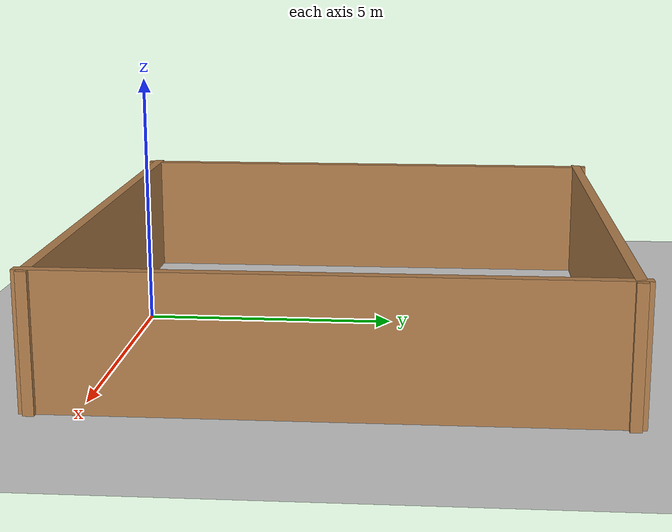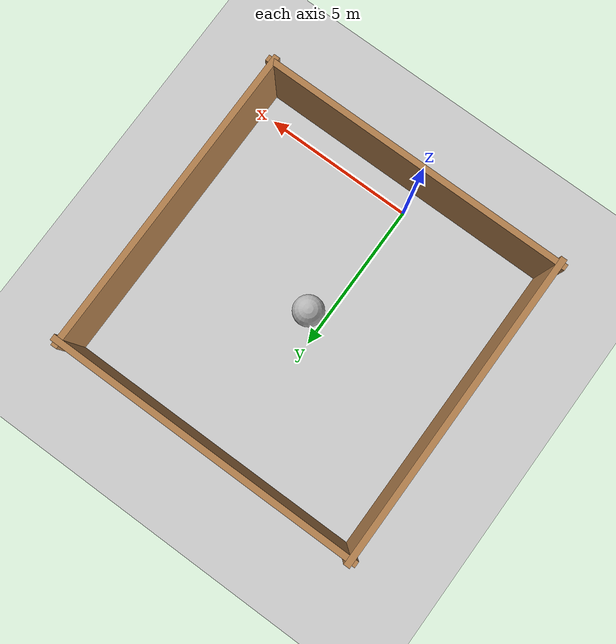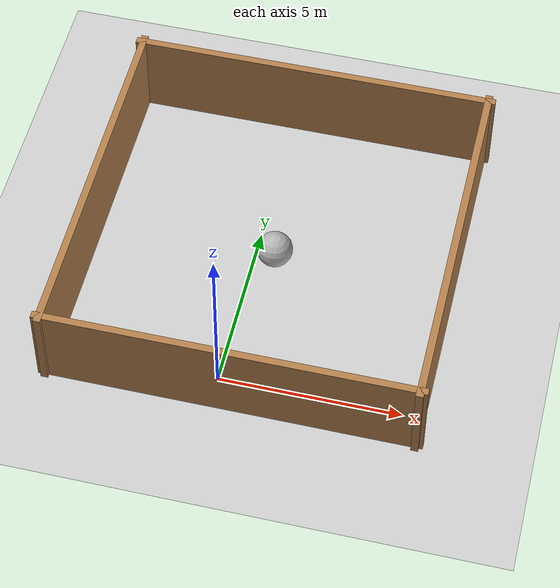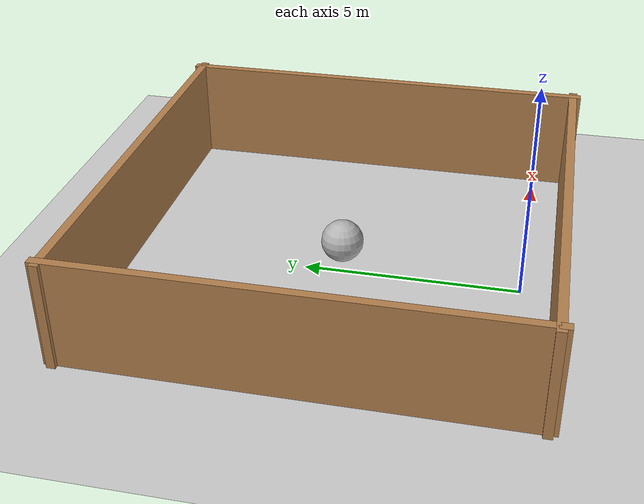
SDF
<sdf version='1.10'>
  <world name='empty'>
    <physics name='1ms' type='ignored'>
      <max_step_size>0.001</max_step_size>
      <real_time_factor>1</real_time_factor>
      <real_time_update_rate>1000</real_time_update_rate>
    </physics>
    <plugin name='gz::sim::systems::Physics' filename='gz-sim-physics-system'/>
    <plugin name='gz::sim::systems::UserCommands' filename='gz-sim-user-commands-system'/>
    <plugin name='gz::sim::systems::SceneBroadcaster' filename='gz-sim-scene-broadcaster-system'/>
    <plugin name='gz::sim::systems::Contact' filename='gz-sim-contact-system'/>
    <plugin name='gz::sim::systems::Sensors' filename='gz-sim-sensors-system'>
        <render_engine>ogre2</render_engine>
    </plugin>
    <gravity>0 0 -9.8000000000000007</gravity>
    <magnetic_field>5.5644999999999998e-06 2.2875799999999999e-05 -4.2388400000000002e-05</magnetic_field>
    <atmosphere type='adiabatic'/>
    <scene>
      <ambient>0.400000006 0.400000006 0.400000006 1</ambient>
      <background>0.699999988 0.699999988 0.699999988 1</background>
      <shadows>true</shadows>
    </scene>
    <model name='ground_plane'>
      <static>true</static>
      <link name='link'>
        <collision name='collision'>
          <geometry>
            <plane>
              <normal>0 0 1</normal>
              <size>100 100</size>
            </plane>
          </geometry>
          <surface>
            <friction>
              <ode/>
            </friction>
            <bounce/>
            <contact/>
          </surface>
        </collision>
        <visual name='visual'>
          <geometry>
            <plane>
              <normal>0 0 1</normal>
              <size>100 100</size>
            </plane>
          </geometry>
          <material>
            <ambient>0.800000012 0.800000012 0.800000012 1</ambient>
            <diffuse>0.800000012 0.800000012 0.800000012 1</diffuse>
            <specular>0.800000012 0.800000012 0.800000012 1</specular>
          </material>
        </visual>
        <pose>0 0 0 0 0 0</pose>
        <inertial>
          <pose>0 0 0 0 0 0</pose>
          <mass>1</mass>
          <inertia>
            <ixx>1</ixx>
            <ixy>0</ixy>
            <ixz>0</ixz>
            <iyy>1</iyy>
            <iyz>0</iyz>
            <izz>1</izz>
          </inertia>
        </inertial>
        <enable_wind>false</enable_wind>
      </link>
      <pose>0 0 0 0 0 0</pose>
      <self_collide>false</self_collide>
    </model>

    <!-- ==================== 围墙开始 ==================== -->
    <!-- 北墙 (y+) -->
    <model name='wall_north'>
      <static>true</static>
      <pose>0.5 9.2 1.25 0 0 0</pose>
      <link name='link'>
        <collision name='collision'>
          <geometry>
            <box><size>10.4 0.2 2.5</size></box>
          </geometry>
        </collision>
        <visual name='visual'>
          <geometry>
            <box><size>10.4 0.2 2.5</size></box>
          </geometry>
          <material>
            <ambient>0.6 0.4 0.2 1</ambient>
            <diffuse>0.7 0.5 0.3 1</diffuse>
          </material>
        </visual>
      </link>
    </model>

    <!-- 南墙 (y-) -->
    <model name='wall_south'>
      <static>true</static>
      <pose>0.5 -0.8 1.25 0 0 0</pose>
      <link name='link'>
        <collision name='collision'>
          <geometry>
            <box><size>10.4 0.2 2.5</size></box>
          </geometry>
        </collision>
        <visual name='visual'>
          <geometry>
            <box><size>10.4 0.2 2.5</size></box>
          </geometry>
          <material>
            <ambient>0.6 0.4 0.2 1</ambient>
            <diffuse>0.7 0.5 0.3 1</diffuse>
          </material>
        </visual>
      </link>
    </model>

    <!-- 东墙 (x+) -->
    <model name='wall_east'>
      <static>true</static>
      <pose>5.5 4.2 1.25 0 0 0</pose>
      <link name='link'>
        <collision name='collision'>
          <geometry>
            <box><size>0.2 10.4 2.5</size></box>
          </geometry>
        </collision>
        <visual name='visual'>
          <geometry>
            <box><size>0.2 10.4 2.5</size></box>
          </geometry>
          <material>
            <ambient>0.6 0.4 0.2 1</ambient>
            <diffuse>0.7 0.5 0.3 1</diffuse>
          </material>
        </visual>
      </link>
    </model>

    <!-- 西墙 (x-) -->
    <model name='wall_west'>
      <static>true</static>
      <pose>-4.5 4.2 1.25 0 0 0</pose>
      <link name='link'>
        <collision name='collision'>
          <geometry>
            <box><size>0.2 10.4 2.5</size></box>
          </geometry>
        </collision>
        <visual name='visual'>
          <geometry>
            <box><size>0.2 10.4 2.5</size></box>
          </geometry>
          <material>
            <ambient>0.6 0.4 0.2 1</ambient>
            <diffuse>0.7 0.5 0.3 1</diffuse>
          </material>
        </visual>
      </link>
    </model>
    <!-- ==================== 围墙结束 ==================== -->

    <model name='sphere'>
      <pose>0.55289871695755455 4.2318949230395164 0.5 0 0 0</pose>
      <link name='sphere_link'>
        <inertial>
          <inertia>
            <ixx>0.10000000000000001</ixx>
            <ixy>0</ixy>
            <ixz>0</ixz>
            <iyy>0.10000000000000001</iyy>
            <iyz>0</iyz>
            <izz>0.10000000000000001</izz>
          </inertia>
          <mass>1</mass>
          <pose>0 0 0 0 0 0</pose>
        </inertial>
        <collision name='sphere_collision'>
          <geometry>
            <sphere>
              <radius>0.5</radius>
            </sphere>
          </geometry>
          <surface>
            <friction>
              <ode/>
            </friction>
            <bounce/>
            <contact/>
          </surface>
        </collision>
        <visual name='sphere_visual'>
          <geometry>
            <sphere>
              <radius>0.5</radius>
            </sphere>
          </geometry>
          <material>
            <ambient>0.300000012 0.300000012 0.300000012 1</ambient>
            <diffuse>0.699999988 0.699999988 0.699999988 1</diffuse>
            <specular>1 1 1 1</specular>
          </material>
        </visual>
        <pose>0 0 0 0 0 0</pose>
        <enable_wind>false</enable_wind>
      </link>
      <static>false</static>
      <self_collide>false</self_collide>
    </model>
    <light name='sun' type='directional'>
      <pose>0 0 10 0 0 0</pose>
      <cast_shadows>true</cast_shadows>
      <intensity>1</intensity>
      <direction>-0.5 0.10000000000000001 -0.90000000000000002</direction>
      <diffuse>0.800000012 0.800000012 0.800000012 1</diffuse>
      <specular>0.200000003 0.200000003 0.200000003 1</specular>
      <attenuation>
        <range>1000</range>
        <linear>0.01</linear>
        <constant>0.90000000000000002</constant>
        <quadratic>0.001</quadratic>
      </attenuation>
      <spot>
        <inner_angle>0</inner_angle>
        <outer_angle>0</outer_angle>
        <falloff>0</falloff>
      </spot>
    </light>
  </world>
</sdf>
